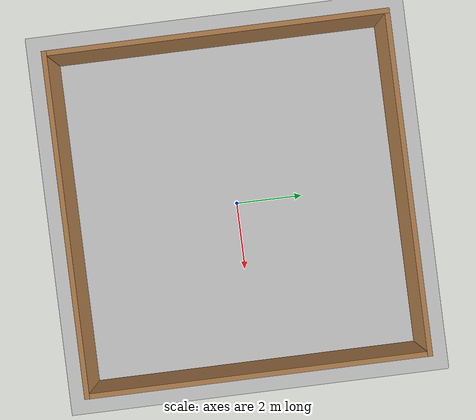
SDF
<sdf version="1.4">
 <world name="default">
  <light name="sun" type="directional">
   <pose>0 0 10 0 -0 0</pose>
   <diffuse>0.8 0.8 0.8 1</diffuse>
   <specular>0.2 0.2 0.2 1</specular>
   <attenuation>
    <range>1000</range>
    <constant>0.9</constant>
    <linear>0.01</linear>
    <quadratic>0.001</quadratic>
   </attenuation>
   <direction>0.5 0.1 -0.9</direction>
  </light>
  <model name="ground_plane">
   <static>1</static>
   <link name="link">
    <collision name="collision">
     <geometry><plane><normal>0 0 1</normal><size>100 100</size></plane></geometry>
     <surface><friction><ode><mu>100</mu><mu2>50</mu2></ode></friction></surface>
    </collision>
    <visual name="visual">
     <cast_shadows>0</cast_shadows>
     <geometry><plane><normal>0 0 1</normal><size>100 100</size></plane></geometry>
     <material>
      <script><uri>file://media/materials/scripts/gazebo.material</uri><name>Gazebo/Grey</name></script>
     </material>
    </visual>
    <velocity_decay><linear>0</linear><angular>0</angular></velocity_decay>
   </link>
  </model>
  <scene><ambient>0.4 0.4 0.4 1</ambient><background>0.7 0.7 0.7 1</background><shadows>0</shadows></scene>
  <physics type="ode">
   <max_step_size>0.01</max_step_size>
   <real_time_factor>1</real_time_factor>
   <real_time_update_rate>0</real_time_update_rate>
   <gravity>0 0 -9.8</gravity>
  </physics>
  <include><uri>model://Frame</uri></include>
 </world>
</sdf>

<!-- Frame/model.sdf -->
<sdf version='1.6'>
  <model name='Frame'>
    <link name='Wall_11'>
      <pose frame=''>0 -4.925 0 0 -0 3.14159</pose>
      <self_collide>0</self_collide>
      <enable_wind>0</enable_wind>
      <kinematic>0</kinematic>
      <visual name='Wall_11_Visual'>
        <pose frame=''>0 0 1.25 0 -0 0</pose>
        <geometry>
          <box>
            <size>10 0.15 2.5</size>
          </box>
        </geometry>
        <material>
          <script>
            <uri>file://media/materials/scripts/gazebo.material</uri>
            <name>Gazebo/Wood</name>
          </script>
          <ambient>1 1 1 1</ambient>
          <shader type='pixel'/>
        </material>
        <meta>
          <layer>0</layer>
        </meta>
        <transparency>0</transparency>
        <cast_shadows>1</cast_shadows>
      </visual>
      <collision name='Wall_11_Collision'>
        <laser_retro>0</laser_retro>
        <max_contacts>10</max_contacts>
        <pose frame=''>0 0 1.25 0 -0 0</pose>
        <geometry>
          <box>
            <size>10 0.15 2.5</size>
          </box>
        </geometry>
        <surface>
          <friction>
            <ode>
              <mu>1</mu>
              <mu2>1</mu2>
              <fdir1>0 0 0</fdir1>
              <slip1>0</slip1>
              <slip2>0</slip2>
            </ode>
            <torsional>
              <coefficient>1</coefficient>
              <patch_radius>0</patch_radius>
              <surface_radius>0</surface_radius>
              <use_patch_radius>1</use_patch_radius>
              <ode>
                <slip>0</slip>
              </ode>
            </torsional>
          </friction>
          <bounce>
            <restitution_coefficient>0</restitution_coefficient>
            <threshold>1e+06</threshold>
          </bounce>
          <contact>
            <collide_without_contact>0</collide_without_contact>
            <collide_without_contact_bitmask>1</collide_without_contact_bitmask>
            <collide_bitmask>1</collide_bitmask>
            <ode>
              <soft_cfm>0</soft_cfm>
              <soft_erp>0.2</soft_erp>
              <kp>1e+13</kp>
              <kd>1</kd>
              <max_vel>0.01</max_vel>
              <min_depth>0</min_depth>
            </ode>
            <bullet>
              <split_impulse>1</split_impulse>
              <split_impulse_penetration_threshold>-0.01</split_impulse_penetration_threshold>
              <soft_cfm>0</soft_cfm>
              <soft_erp>0.2</soft_erp>
              <kp>1e+13</kp>
              <kd>1</kd>
            </bullet>
          </contact>
        </surface>
      </collision>
    </link>
    <link name='Wall_12'>
      <pose frame=''>-4.925 0 0 0 -0 1.5708</pose>
      <self_collide>0</self_collide>
      <enable_wind>0</enable_wind>
      <kinematic>0</kinematic>
      <visual name='Wall_12_Visual'>
        <pose frame=''>0 0 1.25 0 -0 0</pose>
        <geometry>
          <box>
            <size>10 0.15 2.5</size>
          </box>
        </geometry>
        <material>
          <script>
            <uri>file://media/materials/scripts/gazebo.material</uri>
            <name>Gazebo/Wood</name>
          </script>
          <ambient>1 1 1 1</ambient>
          <shader type='pixel'/>
        </material>
        <meta>
          <layer>0</layer>
        </meta>
        <transparency>0</transparency>
        <cast_shadows>1</cast_shadows>
      </visual>
      <collision name='Wall_12_Collision'>
        <laser_retro>0</laser_retro>
        <max_contacts>10</max_contacts>
        <pose frame=''>0 0 1.25 0 -0 0</pose>
        <geometry>
          <box>
            <size>10 0.15 2.5</size>
          </box>
        </geometry>
        <surface>
          <friction>
            <ode>
              <mu>1</mu>
              <mu2>1</mu2>
              <fdir1>0 0 0</fdir1>
              <slip1>0</slip1>
              <slip2>0</slip2>
            </ode>
            <torsional>
              <coefficient>1</coefficient>
              <patch_radius>0</patch_radius>
              <surface_radius>0</surface_radius>
              <use_patch_radius>1</use_patch_radius>
              <ode>
                <slip>0</slip>
              </ode>
            </torsional>
          </friction>
          <bounce>
            <restitution_coefficient>0</restitution_coefficient>
            <threshold>1e+06</threshold>
          </bounce>
          <contact>
            <collide_without_contact>0</collide_without_contact>
            <collide_without_contact_bitmask>1</collide_without_contact_bitmask>
            <collide_bitmask>1</collide_bitmask>
            <ode>
              <soft_cfm>0</soft_cfm>
              <soft_erp>0.2</soft_erp>
              <kp>1e+13</kp>
              <kd>1</kd>
              <max_vel>0.01</max_vel>
              <min_depth>0</min_depth>
            </ode>
            <bullet>
              <split_impulse>1</split_impulse>
              <split_impulse_penetration_threshold>-0.01</split_impulse_penetration_threshold>
              <soft_cfm>0</soft_cfm>
              <soft_erp>0.2</soft_erp>
              <kp>1e+13</kp>
              <kd>1</kd>
            </bullet>
          </contact>
        </surface>
      </collision>
    </link>
    <link name='Wall_8'>
      <pose frame=''>0 4.925 0 0 -0 0</pose>
      <self_collide>0</self_collide>
      <enable_wind>0</enable_wind>
      <kinematic>0</kinematic>
      <visual name='Wall_8_Visual'>
        <pose frame=''>0 0 1.25 0 -0 0</pose>
        <geometry>
          <box>
            <size>10 0.15 2.5</size>
          </box>
        </geometry>
        <material>
          <script>
            <uri>file://media/materials/scripts/gazebo.material</uri>
            <name>Gazebo/Wood</name>
          </script>
          <ambient>1 1 1 1</ambient>
          <shader type='pixel'/>
        </material>
        <meta>
          <layer>0</layer>
        </meta>
        <transparency>0</transparency>
        <cast_shadows>1</cast_shadows>
      </visual>
      <collision name='Wall_8_Collision'>
        <laser_retro>0</laser_retro>
        <max_contacts>10</max_contacts>
        <pose frame=''>0 0 1.25 0 -0 0</pose>
        <geometry>
          <box>
            <size>10 0.15 2.5</size>
          </box>
        </geometry>
        <surface>
          <friction>
            <ode>
              <mu>1</mu>
              <mu2>1</mu2>
              <fdir1>0 0 0</fdir1>
              <slip1>0</slip1>
              <slip2>0</slip2>
            </ode>
            <torsional>
              <coefficient>1</coefficient>
              <patch_radius>0</patch_radius>
              <surface_radius>0</surface_radius>
              <use_patch_radius>1</use_patch_radius>
              <ode>
                <slip>0</slip>
              </ode>
            </torsional>
          </friction>
          <bounce>
            <restitution_coefficient>0</restitution_coefficient>
            <threshold>1e+06</threshold>
          </bounce>
          <contact>
            <collide_without_contact>0</collide_without_contact>
            <collide_without_contact_bitmask>1</collide_without_contact_bitmask>
            <collide_bitmask>1</collide_bitmask>
            <ode>
              <soft_cfm>0</soft_cfm>
              <soft_erp>0.2</soft_erp>
              <kp>1e+13</kp>
              <kd>1</kd>
              <max_vel>0.01</max_vel>
              <min_depth>0</min_depth>
            </ode>
            <bullet>
              <split_impulse>1</split_impulse>
              <split_impulse_penetration_threshold>-0.01</split_impulse_penetration_threshold>
              <soft_cfm>0</soft_cfm>
              <soft_erp>0.2</soft_erp>
              <kp>1e+13</kp>
              <kd>1</kd>
            </bullet>
          </contact>
        </surface>
      </collision>
    </link>
    <link name='Wall_9'>
      <pose frame=''>4.925 0 0 0 0 -1.5708</pose>
      <self_collide>0</self_collide>
      <enable_wind>0</enable_wind>
      <kinematic>0</kinematic>
      <visual name='Wall_9_Visual'>
        <pose frame=''>0 0 1.25 0 -0 0</pose>
        <geometry>
          <box>
            <size>10 0.15 2.5</size>
          </box>
        </geometry>
        <material>
          <script>
            <uri>file://media/materials/scripts/gazebo.material</uri>
            <name>Gazebo/Wood</name>
          </script>
          <ambient>1 1 1 1</ambient>
          <shader type='pixel'/>
        </material>
        <meta>
          <layer>0</layer>
        </meta>
        <transparency>0</transparency>
        <cast_shadows>1</cast_shadows>
      </visual>
      <collision name='Wall_9_Collision'>
        <laser_retro>0</laser_retro>
        <max_contacts>10</max_contacts>
        <pose frame=''>0 0 1.25 0 -0 0</pose>
        <geometry>
          <box>
            <size>10 0.15 2.5</size>
          </box>
        </geometry>
        <surface>
          <friction>
            <ode>
              <mu>1</mu>
              <mu2>1</mu2>
              <fdir1>0 0 0</fdir1>
              <slip1>0</slip1>
              <slip2>0</slip2>
            </ode>
            <torsional>
              <coefficient>1</coefficient>
              <patch_radius>0</patch_radius>
              <surface_radius>0</surface_radius>
              <use_patch_radius>1</use_patch_radius>
              <ode>
                <slip>0</slip>
              </ode>
            </torsional>
          </friction>
          <bounce>
            <restitution_coefficient>0</restitution_coefficient>
            <threshold>1e+06</threshold>
          </bounce>
          <contact>
            <collide_without_contact>0</collide_without_contact>
            <collide_without_contact_bitmask>1</collide_without_contact_bitmask>
            <collide_bitmask>1</collide_bitmask>
            <ode>
              <soft_cfm>0</soft_cfm>
              <soft_erp>0.2</soft_erp>
              <kp>1e+13</kp>
              <kd>1</kd>
              <max_vel>0.01</max_vel>
              <min_depth>0</min_depth>
            </ode>
            <bullet>
              <split_impulse>1</split_impulse>
              <split_impulse_penetration_threshold>-0.01</split_impulse_penetration_threshold>
              <soft_cfm>0</soft_cfm>
              <soft_erp>0.2</soft_erp>
              <kp>1e+13</kp>
              <kd>1</kd>
            </bullet>
          </contact>
        </surface>
      </collision>
    </link>
    <static>1</static>
    <allow_auto_disable>1</allow_auto_disable>
  </model>
</sdf>
